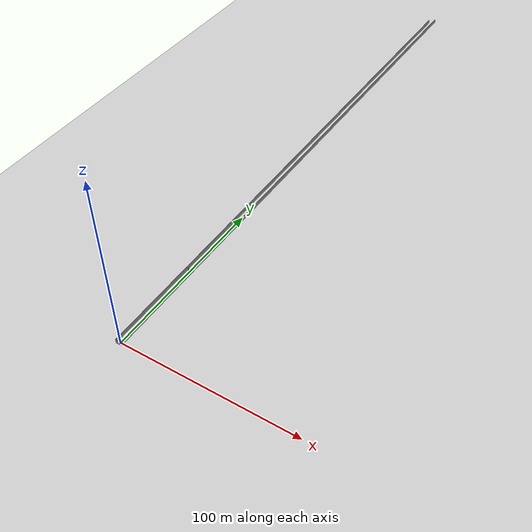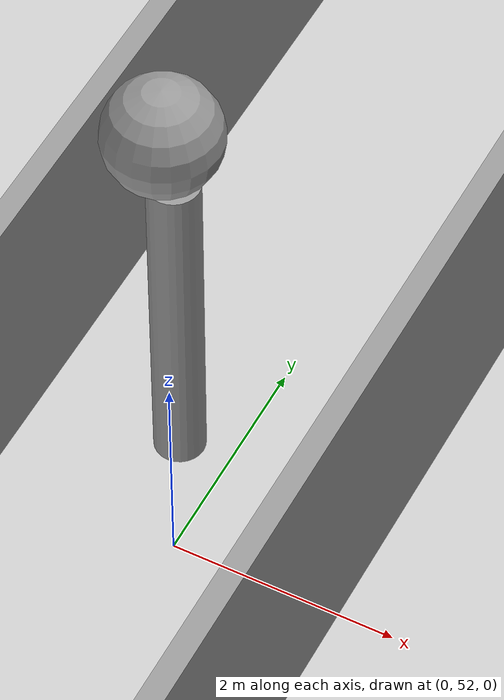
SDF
<sdf version="1.6">
 <world name="default">
  <model name="ground_plane">
   <static>1</static>
   <link name="link">
    <collision name="collision">
     <geometry><plane><normal>0 0 1</normal><size>100 100</size></plane></geometry>
     <surface><friction><ode><mu>100</mu><mu2>50</mu2></ode></friction></surface>
    </collision>
    <visual name="visual">
     <cast_shadows>0</cast_shadows>
     <geometry><plane><normal>0 0 1</normal><size>100 100</size></plane></geometry>
     <material>
      <script><uri>file://media/materials/scripts/gazebo.material</uri><name>Gazebo/Grey</name></script>
     </material>
    </visual>
    <velocity_decay><linear>0</linear><angular>0</angular></velocity_decay>
   </link>
  </model>
  <light name="sun" type="directional">
   <pose>0 0 10 0 -0 0</pose>
   <diffuse>0.8 0.8 0.8 1</diffuse>
   <specular>0.2 0.2 0.2 1</specular>
   <attenuation>
    <range>1000</range>
    <constant>0.9</constant>
    <linear>0.01</linear>
    <quadratic>0.001</quadratic>
   </attenuation>
   <direction>-0.5 0.1 -0.9</direction>
  </light>
  <physics name="default_physics" default="0" type="ode">
   <max_step_size>0.001</max_step_size>
   <real_time_factor>1</real_time_factor>
   <real_time_update_rate>1000</real_time_update_rate>
  </physics>
  <scene><ambient>0.4 0.4 0.4 1</ambient><background>0.7 0.7 0.7 1</background><shadows>1</shadows></scene>
  <spherical_coordinates>
   <surface_model>EARTH_WGS84</surface_model>
   <latitude_deg>0</latitude_deg>
   <longitude_deg>0</longitude_deg>
   <elevation>0</elevation>
   <heading_deg>0</heading_deg>
  </spherical_coordinates>
  <model name="long-corridor">
   <link name="Wall_0">
    <collision name="Wall_0_Collision">
     <geometry><box><size>3.37 0.2 2.5</size></box></geometry>
     <pose>0 0 1.25 0 -0 0</pose>
    </collision>
    <visual name="Wall_0_Visual">
     <pose>0 0 1.25 0 -0 0</pose>
     <geometry><box><size>3.37 0.2 2.5</size></box></geometry>
     <material>
      <script><uri>file://media/materials/scripts/gazebo.material</uri><name>Gazebo/Grey</name></script>
     </material>
    </visual>
    <velocity_decay><linear>0</linear><angular>0</angular></velocity_decay>
    <pose>-0.175 -1.17 0 0 -0 0</pose>
   </link>
   <link name="Wall_1">
    <collision name="Wall_1_Collision">
     <geometry><box><size>38.6793 0.2 2.5</size></box></geometry>
     <pose>0 0 1.25 0 -0 0</pose>
    </collision>
    <visual name="Wall_1_Visual">
     <pose>0 0 1.25 0 -0 0</pose>
     <geometry><box><size>38.6793 0.2 2.5</size></box></geometry>
     <material>
      <script><uri>file://media/materials/scripts/gazebo.material</uri><name>Gazebo/Grey</name></script>
     </material>
    </visual>
    <velocity_decay><linear>0</linear><angular>0</angular></velocity_decay>
    <pose>1.41 18.0697 0 0 -0 1.5708</pose>
   </link>
   <link name="Wall_2">
    <collision name="Wall_2_Collision">
     <geometry><box><size>304.557 0.2 2.5</size></box></geometry>
     <pose>0 0 1.25 0 -0 0</pose>
    </collision>
    <visual name="Wall_2_Visual">
     <pose>0 0 1.25 0 -0 0</pose>
     <geometry><box><size>304.557 0.2 2.5</size></box></geometry>
     <material>
      <script><uri>file://media/materials/scripts/gazebo.material</uri><name>Gazebo/Grey</name></script>
     </material>
    </visual>
    <velocity_decay><linear>0</linear><angular>0</angular></velocity_decay>
    <pose>1.41 189.488 0 0 -0 1.5708</pose>
   </link>
   <link name="Wall_4">
    <collision name="Wall_4_Collision">
     <geometry><box><size>216.933 0.2 2.5</size></box></geometry>
     <pose>0 0 1.25 0 -0 0</pose>
    </collision>
    <visual name="Wall_4_Visual">
     <pose>0 0 1.25 0 -0 0</pose>
     <geometry><box><size>216.933 0.2 2.5</size></box></geometry>
     <material>
      <script><uri>file://media/materials/scripts/gazebo.material</uri><name>Gazebo/Grey</name></script>
     </material>
    </visual>
    <velocity_decay><linear>0</linear><angular>0</angular></velocity_decay>
    <pose>-1.83536 107.2 0 0 -0 1.5708</pose>
   </link>
   <link name="Wall_5">
    <collision name="Wall_5_Collision">
     <geometry><box><size>123.12 0.2 2.5</size></box></geometry>
     <pose>0 0 1.25 0 -0 0</pose>
    </collision>
    <visual name="Wall_5_Visual">
     <pose>0 0 1.25 0 -0 0</pose>
     <geometry><box><size>123.12 0.2 2.5</size></box></geometry>
     <material>
      <script><uri>file://media/materials/scripts/gazebo.material</uri><name>Gazebo/Grey</name></script>
     </material>
    </visual>
    <velocity_decay><linear>0</linear><angular>0</angular></velocity_decay>
    <pose>-1.83536 277.026 0 0 -0 1.5708</pose>
   </link>
   <static>1</static>
  </model>
  <gravity>0 0 -9.8</gravity>
  <magnetic_field>6e-06 2.3e-05 -4.2e-05</magnetic_field>
  <atmosphere type="adiabatic"/>
  <model name="pylon">
   <link name="link_0">
    <pose>0.045738 -0.007294 -1.60397 0 -0 0</pose>
    <inertial>
     <mass>1.08335</mass>
     <inertia>
      <ixx>2.68295</ixx>
      <ixy>0</ixy>
      <ixz>0</ixz>
      <iyy>2.68295</iyy>
      <iyz>0</iyz>
      <izz>0.0269783</izz>
     </inertia>
    </inertial>
    <visual name="visual">
     <geometry><cylinder><radius>0.223171</radius><length>5.43774</length></cylinder></geometry>
     <material>
      <lighting>1</lighting>
      <script><uri>file://media/materials/scripts/gazebo.material</uri><name>Gazebo/Grey</name></script>
      <shader type="pixel"><normal_map>__default__</normal_map></shader>
      <ambient>0.3 0.3 0.3 1</ambient>
      <diffuse>0.7 0.7 0.7 1</diffuse>
      <specular>0.01 0.01 0.01 1</specular>
      <emissive>0 0 0 1</emissive>
     </material>
    </visual>
   </link>
   <link name="link_1">
    <pose>-0.045735 0.007301 1.60397 0 -0 0</pose>
    <inertial>
     <mass>1</mass>
     <inertia><ixx>0.1</ixx><ixy>0</ixy><ixz>0</ixz><iyy>0.1</iyy><iyz>0</iyz><izz>0.1</izz></inertia>
    </inertial>
    <visual name="visual">
     <geometry><sphere><radius>0.5</radius></sphere></geometry>
     <material>
      <lighting>1</lighting>
      <script><uri>file://media/materials/scripts/gazebo.material</uri><name>Gazebo/Grey</name></script>
      <shader type="pixel"><normal_map>__default__</normal_map></shader>
      <ambient>0.3 0.3 0.3 1</ambient>
      <diffuse>0.7 0.7 0.7 1</diffuse>
      <specular>0.01 0.01 0.01 1</specular>
      <emissive>0 0 0 1</emissive>
     </material>
    </visual>
   </link>
   <joint name="link_0_JOINT_0" type="fixed">
    <parent>link_0</parent>
    <child>link_1</child>
    <physics>
     <ode><limit><cfm>0</cfm><erp>0.2</erp></limit><suspension><cfm>0</cfm><erp>0.2</erp></suspension></ode>
    </physics>
   </joint>
   <static>1</static>
   <pose>-0.517252 53 2.10397 0 -0 0</pose>
  </model>
 </world>
</sdf>
